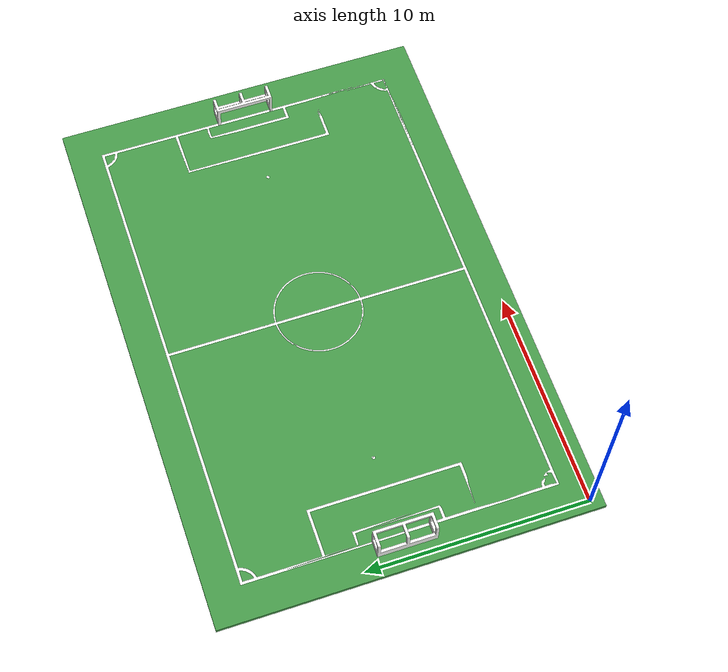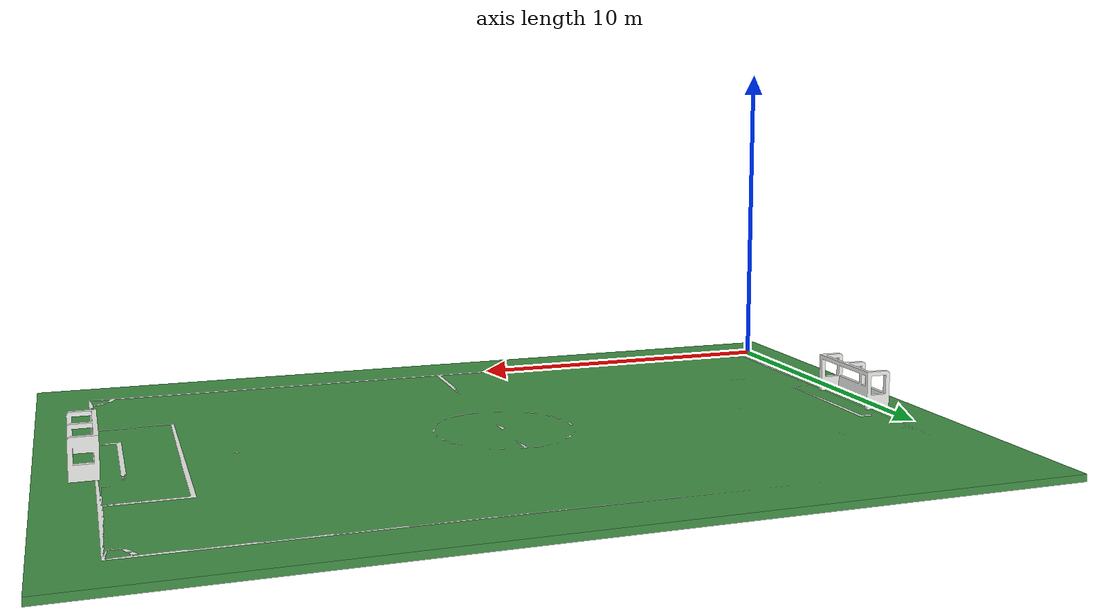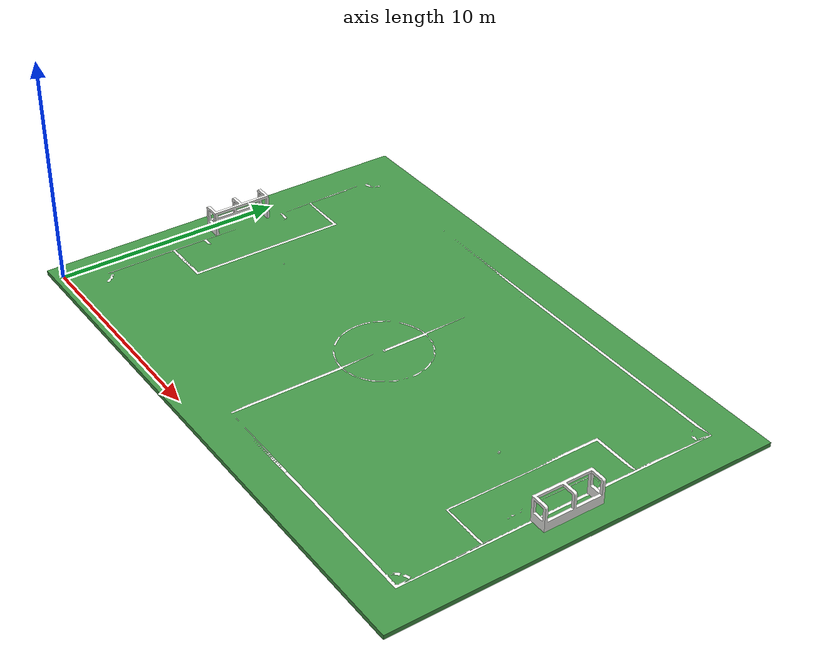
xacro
<?xml version="1.0" ?>
<robot name="arena" xmlns:xacro="http://www.ros.org/wiki/xacro">

<xacro:include filename="$(find arena_description)/urdf/materials.xacro" />
<xacro:include filename="$(find arena_description)/urdf/arena.trans" />
<link name="base_link">
  <inertial>
    <origin xyz="12.000000000000002 7.999999999999999 0.15071609078444373" rpy="0 0 0"/>
    <mass value="93375.38975607335"/>
    <inertia ixx="2248162.518846" iyy="4825902.231392" izz="7073437.885719" ixy="0.0" iyz="-0.0" ixz="0.0"/>
  </inertial>
  <visual>
    <origin xyz="0 0 0" rpy="0 0 0"/>
    <geometry>
      <mesh filename="package://arena_description/meshes/base_link.stl" scale="0.001 0.001 0.001"/>
    </geometry>
    <material name="powder_coat_rough_green"/>
  </visual>
  <collision>
    <origin xyz="0 0 0" rpy="0 0 0"/>
    <geometry>
      <mesh filename="package://arena_description/meshes/base_link.stl" scale="0.001 0.001 0.001"/>
    </geometry>
  </collision>
</link>

<link name="lines_1">
  <inertial>
    <origin xyz="2.1316282072803006e-14 -1.7763568394002505e-14 -0.024999999999999856" rpy="0 0 0"/>
    <mass value="6207.291096484064"/>
    <inertia ixx="151339.772467" iyy="410663.790844" izz="562000.976939" ixy="0.0" iyz="-0.0" ixz="0.0"/>
  </inertial>
  <visual>
    <origin xyz="-12.0 -8.0 -0.25" rpy="0 0 0"/>
    <geometry>
      <mesh filename="package://arena_description/meshes/lines_1.stl" scale="0.001 0.001 0.001"/>
    </geometry>
    <material name="powder_coat_rough_white"/>
  </visual>
  <collision>
    <origin xyz="-12.0 -8.0 -0.25" rpy="0 0 0"/>
    <geometry>
      <mesh filename="package://arena_description/meshes/lines_1.stl" scale="0.001 0.001 0.001"/>
    </geometry>
  </collision>
</link>

<link name="Goal_post_1_1">
  <inertial>
    <origin xyz="-0.3470758041525085 -0.04252346159721121 0.46666230053339774" rpy="0 0 0"/>
    <mass value="2527.7607834350138"/>
    <inertia ixx="2709.097075" iyy="534.987868" izz="2532.519199" ixy="16.368376" iyz="-11.358587" ixz="-127.45024"/>
  </inertial>
  <visual>
    <origin xyz="-1.0 -8.0 -0.25" rpy="0 0 0"/>
    <geometry>
      <mesh filename="package://arena_description/meshes/Goal_post_1_1.stl" scale="0.001 0.001 0.001"/>
    </geometry>
    <material name="powder_coat_rough_white"/>
  </visual>
  <collision>
    <origin xyz="-1.0 -8.0 -0.25" rpy="0 0 0"/>
    <geometry>
      <mesh filename="package://arena_description/meshes/Goal_post_1_1.stl" scale="0.001 0.001 0.001"/>
    </geometry>
  </collision>
</link>

<link name="Goal_post_1_2">
  <inertial>
    <origin xyz="0.3470758041526203 0.04252346159631415 0.46666230053339763" rpy="0 0 0"/>
    <mass value="2527.7607834350138"/>
    <inertia ixx="2709.097075" iyy="534.987868" izz="2532.519199" ixy="16.368376" iyz="11.358587" ixz="127.45024"/>
  </inertial>
  <visual>
    <origin xyz="-23.0 -8.0 -0.25" rpy="0 0 0"/>
    <geometry>
      <mesh filename="package://arena_description/meshes/Goal_post_1_2.stl" scale="0.001 0.001 0.001"/>
    </geometry>
    <material name="powder_coat_rough_white"/>
  </visual>
  <collision>
    <origin xyz="-23.0 -8.0 -0.25" rpy="0 0 0"/>
    <geometry>
      <mesh filename="package://arena_description/meshes/Goal_post_1_2.stl" scale="0.001 0.001 0.001"/>
    </geometry>
  </collision>
</link>

<joint name="Rigid 1" type="fixed">
  <origin xyz="12.0 8.0 0.25" rpy="0 0 0"/>
  <parent link="base_link"/>
  <child link="lines_1"/>
</joint>

<joint name="Rigid 2" type="fixed">
  <origin xyz="-11.0 0.0 0.0" rpy="0 0 0"/>
  <parent link="lines_1"/>
  <child link="Goal_post_1_1"/>
</joint>

<joint name="Rigid 3" type="fixed">
  <origin xyz="11.0 0.0 0.0" rpy="0 0 0"/>
  <parent link="lines_1"/>
  <child link="Goal_post_1_2"/>
</joint>

</robot>

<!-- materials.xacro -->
<robot name="arena" xmlns:xacro="http://www.ros.org/wiki/xacro" >

<material name="silver_default">
  <color rgba="0.700 0.700 0.700 1.000"/>
</material>
<material name="powder_coat_rough_green">
  <color rgba="0.26666666666666666 0.5882352941176471 0.2823529411764706 0.0"/>
</material>
<material name="powder_coat_rough_white">
  <color rgba="0.9647058823529412 0.9647058823529412 0.9529411764705882 0.0"/>
</material>

</robot>
